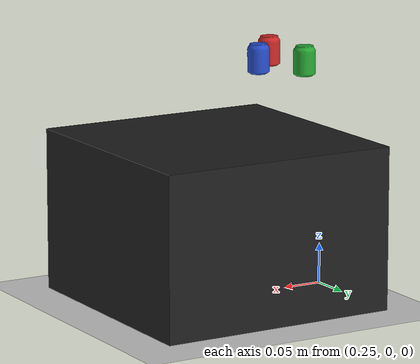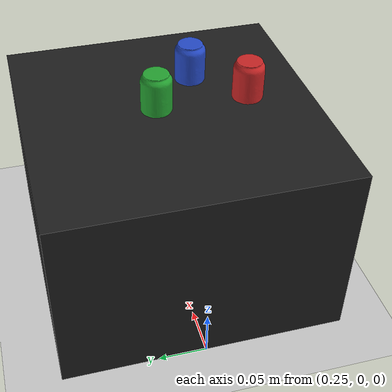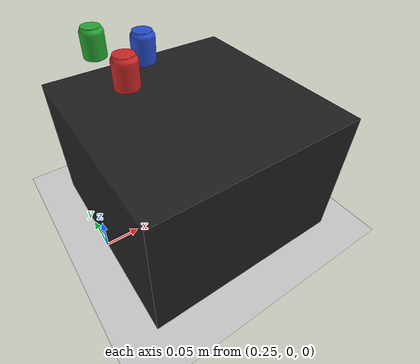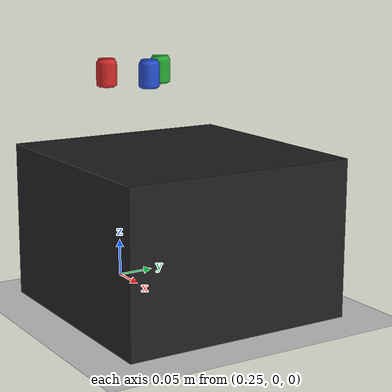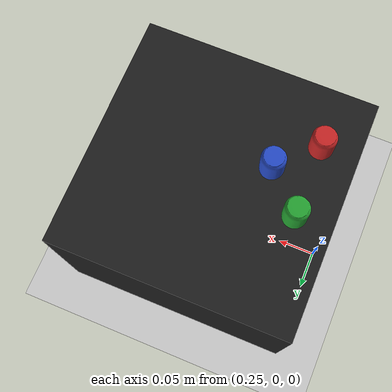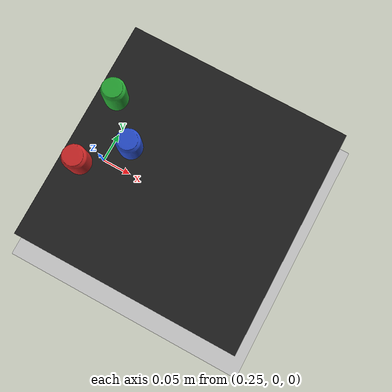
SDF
<?xml version='1.0' ?>
<sdf version='1.4'>
  <world name='empty'>
    <!-- A global light source -->
    <include>
      <uri>model://sun</uri>
    </include>

    <!-- A ground plane -->
    <include>
      <uri>model://ground_plane</uri>
    </include>

    <!-- Physics settings for simulation -->
    <physics type='ode'>
      <max_step_size>0.001</max_step_size>
      <real_time_factor>1</real_time_factor>
      <real_time_update_rate>1000</real_time_update_rate>
      <gravity>0 0 -9.81</gravity>
    </physics>

   <model name='coke_can_box_model1'>
      <pose frame=''>0.30 0.04 0.2165 0 0 0</pose>
      <link name='coke_can'>
        <inertial>
          <mass>0.001</mass>
          <inertia>
            <ixx>0.00016</ixx>
            <ixy>0</ixy>
            <ixz>0</ixz>
            <iyy>0.00016</iyy>
            <iyz>0</iyz>
            <izz>0.00006</izz>
          </inertia>
        </inertial>
        <collision name='collision'>

            <geometry>
                <mesh>
                    <uri>model://coke_can/meshes/coke_can.dae</uri>
                    <scale>0.4 0.4 0.3</scale>
                </mesh>
            </geometry>
          <max_contacts>10</max_contacts>
          <surface>
                   <friction>
                     <ode>
                       <mu>0.6</mu>
                       <mu2>0.6</mu2>
                     </ode>
                   </friction>
                   <contact>
                     <ode>
                       <kp>10000000.0</kp>
                       <kd>1.0</kd>
                       <min_depth>0.001</min_depth>
                       <max_vel>0.1</max_vel>
                     </ode>
                   </contact>
           </surface>
        </collision>
        <visual name='visual'>
            <geometry>
                <mesh>
                    <uri>model://coke_can/meshes/coke_can.dae</uri>
                    <scale>0.4 0.4 0.3</scale>
                </mesh>
            </geometry>
          <material>
            <script>
              <name>Gazebo/Green</name>
              <uri>file://media/materials/scripts/gazebo.material</uri>
            </script>
          </material>
        </visual>
        <self_collide>0</self_collide>
        <kinematic>0</kinematic>
      </link>
    </model>

   <model name='coke_can_box_model2'>
      <pose frame=''>0.34 0 0.2165 0 0 0</pose>
      <link name='coke_can'>
        <inertial>
          <mass>0.001</mass>
          <inertia>
            <ixx>0.00016</ixx>
            <ixy>0</ixy>
            <ixz>0</ixz>
            <iyy>0.00016</iyy>
            <iyz>0</iyz>
            <izz>0.00006</izz>
          </inertia>
        </inertial>
        <collision name='collision'>

            <geometry>
                <mesh>
                    <uri>model://coke_can/meshes/coke_can.dae</uri>
                    <scale>0.4 0.4 0.3</scale>
                </mesh>
            </geometry>
          <max_contacts>10</max_contacts>
          <surface>
                   <friction>
                     <ode>
                       <mu>0.6</mu>
                       <mu2>0.6</mu2>
                     </ode>
                   </friction>
                   <contact>
                     <ode>
                       <kp>10000000.0</kp>
                       <kd>1.0</kd>
                       <min_depth>0.001</min_depth>
                       <max_vel>0.1</max_vel>
                     </ode>
                   </contact>
           </surface>
        </collision>
        <visual name='visual'>
            <geometry>
                <mesh>
                    <uri>model://coke_can/meshes/coke_can.dae</uri>
                    <scale>0.4 0.4 0.3</scale>
                </mesh>
            </geometry>
          <material>
            <script>
              <name>Gazebo/Blue</name>
              <uri>file://media/materials/scripts/gazebo.material</uri>
            </script>
          </material>
        </visual>
        <self_collide>0</self_collide>
        <kinematic>0</kinematic>
      </link>
    </model>

   <model name='coke_can_box_model3'>
      <pose frame=''>0.30 -0.04 0.2165 0 0 0</pose>
      <link name='coke_can'>
        <inertial>
          <mass>0.001</mass>
          <inertia>
            <ixx>0.00016</ixx>
            <ixy>0</ixy>
            <ixz>0</ixz>
            <iyy>0.00016</iyy>
            <iyz>0</iyz>
            <izz>0.00006</izz>
          </inertia>
        </inertial>
        <collision name='collision'>

            <geometry>
                <mesh>
                    <uri>model://coke_can/meshes/coke_can.dae</uri>
                    <scale>0.4 0.4 0.3</scale>
                </mesh>
            </geometry>
          <max_contacts>10</max_contacts>
          <surface>
                   <friction>
                     <ode>
                       <mu>0.6</mu>
                       <mu2>0.6</mu2>
                     </ode>
                   </friction>
                   <contact>
                     <ode>
                       <kp>10000000.0</kp>
                       <kd>1.0</kd>
                       <min_depth>0.001</min_depth>
                       <max_vel>0.1</max_vel>
                     </ode>
                   </contact>
           </surface>
        </collision>
        <visual name='visual'>
            <geometry>
                <mesh>
                    <uri>model://coke_can/meshes/coke_can.dae</uri>
                    <scale>0.4 0.4 0.3</scale>
                </mesh>
            </geometry>
          <material>
            <script>
              <name>Gazebo/Red</name>
              <uri>file://media/materials/scripts/gazebo.material</uri>
            </script>
          </material>
        </visual>
        <self_collide>0</self_collide>
        <kinematic>0</kinematic>
      </link>
    </model>

   <model name='table_box_model'>
      <static>true</static>
      <pose frame=''>0.40 0.0 0.1 0 -0 1.5707963265</pose>
      <link name='table_box_link'>
        <inertial>
          <mass>1</mass>
          <inertia>
            <ixx>0.166667</ixx>
            <ixy>0</ixy>
            <ixz>0</ixz>
            <iyy>0.166667</iyy>
            <iyz>0</iyz>
            <izz>0.166667</izz>
          </inertia>
        </inertial>
        <collision name='collision'>
          <geometry>
            <box>
              <size>0.30 0.30 0.2</size>
            </box>
          </geometry>
          <max_contacts>10</max_contacts>
          <surface>
            <contact>
              <ode/>
            </contact>
            <bounce/>
            <friction>
              <ode>
                <mu>0.6</mu>
                <mu2>0.6</mu2>
              </ode>
              <torsional>
                <ode/>
              </torsional>
            </friction>
          </surface>
        </collision>
        <visual name='visual'>
          <geometry>
            <box>
              <size>0.30 0.30 0.2</size>
            </box>
          </geometry>
          <material>
            <script>
              <name>Gazebo/Black</name>
              <uri>file://media/materials/scripts/gazebo.material</uri>
            </script>
          </material>
        </visual>
        <self_collide>0</self_collide>
        <kinematic>0</kinematic>
      </link>
    </model>

  </world>
</sdf>
